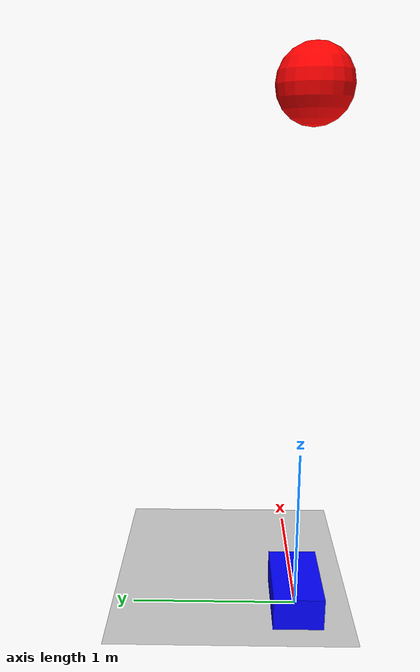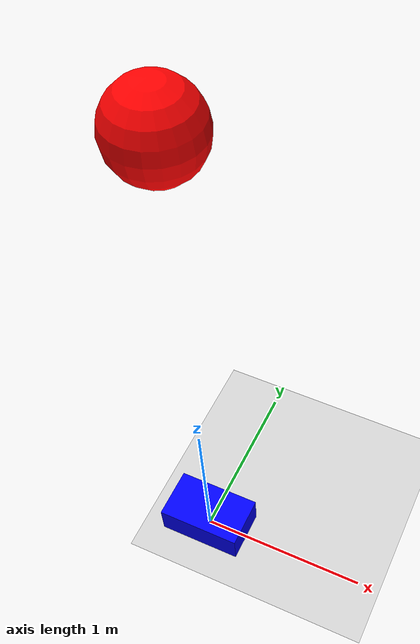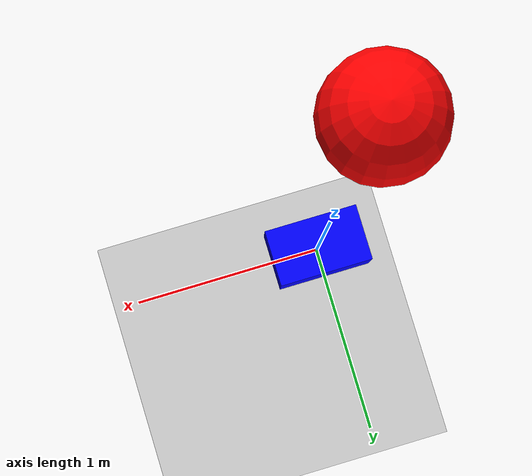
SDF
<?xml version="1.0" ?>
<sdf version="1.8">
  <world name="cpomdp_world">

    <!-- Ground -->
    <include>
      <uri>https://fuel.gazebosim.org/1.0/openrobotics/models/Ground Plane</uri>
    </include>

    <include>
      <uri>https://fuel.gazebosim.org/1.0/openrobotics/models/Sun</uri>
    </include>

    <!-- UGV -->
    <model name="ugv">
      <pose>0 0 0.1 0 0 0</pose>
      <link name="base_link">
        <collision name="collision">
          <geometry>
            <box><size>0.5 0.3 0.2</size></box>
          </geometry>
        </collision>
        <visual name="visual">
          <geometry>
            <box><size>0.5 0.3 0.2</size></box>
          </geometry>
          <material>
            <ambient>0 0 1 1</ambient>
          </material>
        </visual>
      </link>
    </model>

    <!-- UAV -->
    <model name="uav">
      <pose>0 0 3 0 0 0</pose>
      <link name="base_link">

        <!-- Camera -->
        <sensor name="down_camera" type="camera">
          <pose>0 0 0 0 1.57 0</pose>
          <camera>
            <horizontal_fov>1.0</horizontal_fov>
            <image>
              <width>640</width>
              <height>480</height>
            </image>
          </camera>
          <always_on>true</always_on>
          <update_rate>30</update_rate>
        </sensor>

        <visual name="visual">
          <geometry>
            <sphere><radius>0.2</radius></sphere>
          </geometry>
          <material>
            <ambient>1 0 0 1</ambient>
          </material>
        </visual>

      </link>
    </model>

  </world>
</sdf>
